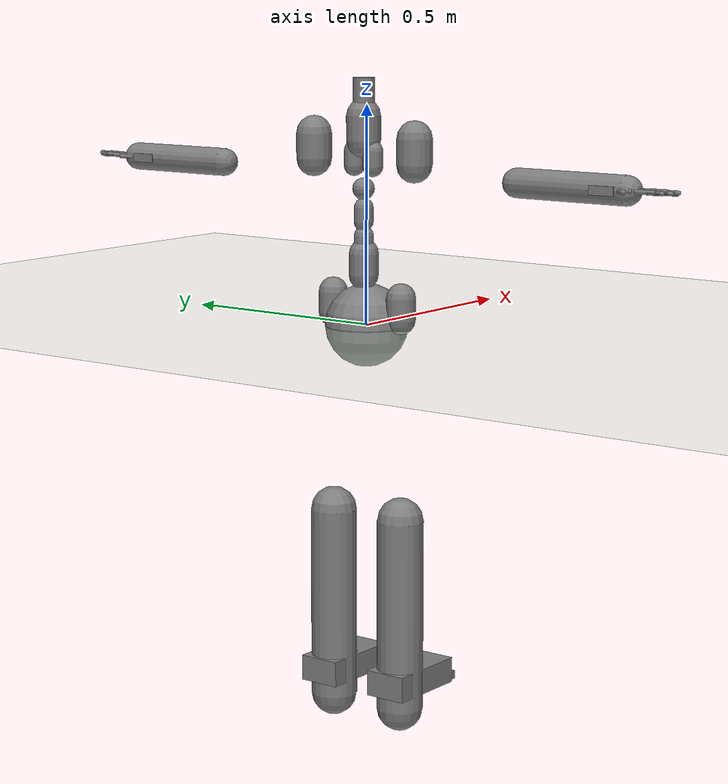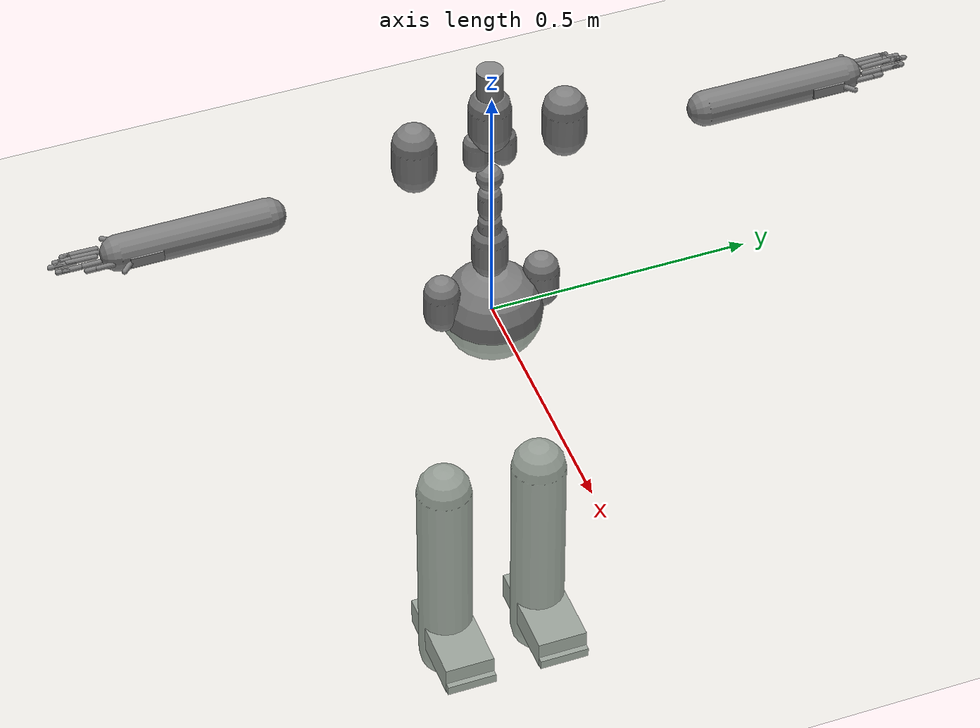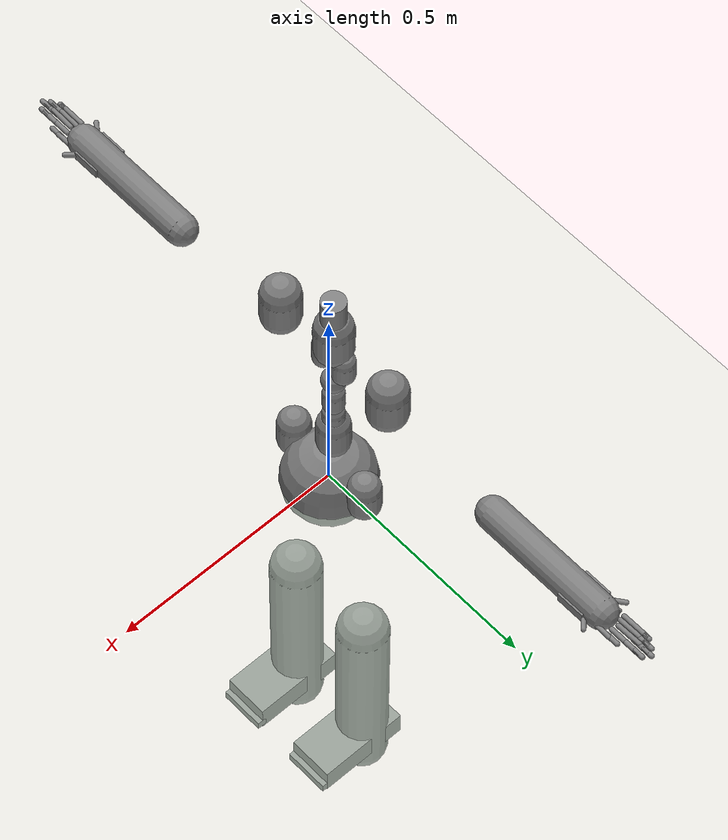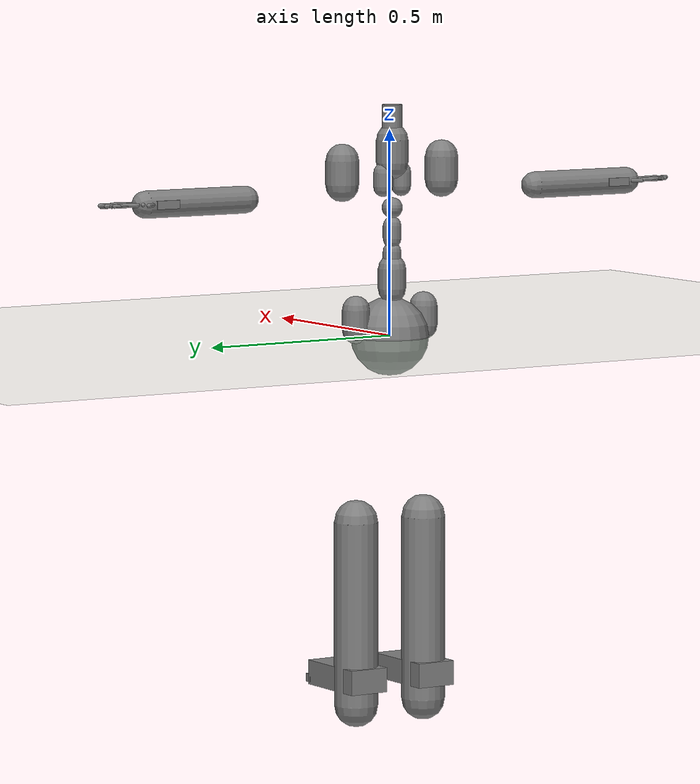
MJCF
<?xml version="1.0" ?>
<mujoco model="humanoid">
  <compiler coordinate="local"/>
  <statistic extent="2" center="0 0 1"/>
  <option timestep="0.00555"/>
  <default>
    <motor ctrlrange="-1 1" ctrllimited="true"/>
    <geom type="capsule" condim="1" friction="1.0 0.05 0.05" solimp=".9 .99 .003" solref=".015 1"/>
    <joint type="hinge" damping="0.1" stiffness="5" armature=".007" limited="true" solimplimit="0 .99 .01"/>
    <site size=".04" group="3"/>
  </default>
  <asset>
    <texture type="skybox" builtin="gradient" rgb1=".4 .5 .6" rgb2="0 0 0" width="100" height="100"/>
    <texture builtin="flat" height="1278" mark="cross" markrgb="1 1 1" name="texgeom" random="0.01" rgb1="0.8 0.6 0.4" rgb2="0.8 0.6 0.4" type="cube" width="127"/>
    <texture builtin="checker" height="100" name="texplane" rgb1="0 0 0" rgb2="0.8 0.8 0.8" type="2d" width="100"/>
    <material name="MatPlane" reflectance="0.5" shininess="1" specular="1" texrepeat="60 60" texture="texplane"/>
    <material name="geom" texture="texgeom" texuniform="true"/>
  </asset>
  <worldbody>
    <light cutoff="100" diffuse="1 1 1" dir="-0 0 -1.3" directional="true" exponent="1" pos="0 0 1.3" specular=".1 .1 .1"/>
    <geom conaffinity="1" condim="3" name="floor" pos="0 0 0" rgba="0.8 0.9 0.8 1" size="100 100 .2" type="plane" material="MatPlane"/>
    <body name="pHipOrigin" pos="0 0 0">
      <freejoint name="pHipOrigin"/>
      <geom type="sphere" contype="1" conaffinity="1" density="4629.6296296296305" size="0.09519" pos="0.0000 0.0000 -0.0000"/>
      <body name="jL5S1" pos="-0.01072624 0 0.09653585">
        <geom type="capsule" contype="1" conaffinity="1" density="1000" fromto="0 0 0.01943 0 0 0.06799" size="0.03400"/>
        <joint name="jL5S1_x" type="hinge" pos="0 0 0" axis="1 0 0" stiffness="500" damping="500" armature="0.02" range="-180.0000 180.0000"/>
        <joint name="jL5S1_y" type="hinge" pos="0 0 0" axis="0 1 0" stiffness="500" damping="500" armature="0.02" range="-180.0000 180.0000"/>
        <joint name="jL5S1_z" type="hinge" pos="0 0 0" axis="0 0 1" stiffness="500" damping="500" armature="0.02" range="-180.0000 180.0000"/>
        <body name="jL4L3" pos="0 0 0.06418378">
          <geom type="capsule" contype="1" conaffinity="1" density="1000" fromto="0 0 0.01284 0 0 0.04493" size="0.02246"/>
          <joint name="jL4L3_x" type="hinge" pos="0 0 0" axis="1 0 0" stiffness="500" damping="500" armature="0.02" range="-180.0000 180.0000"/>
          <joint name="jL4L3_y" type="hinge" pos="0 0 0" axis="0 1 0" stiffness="500" damping="500" armature="0.02" range="-180.0000 180.0000"/>
          <joint name="jL4L3_z" type="hinge" pos="0 0 0" axis="0 0 1" stiffness="500" damping="500" armature="0.02" range="-180.0000 180.0000"/>
          <body name="jL1T12" pos="-0.00049008 0 0.06352319">
            <geom type="capsule" contype="1" conaffinity="1" density="1000" fromto="0 0 0.01271 0 0 0.04447" size="0.02223"/>
            <joint name="jL1T12_x" type="hinge" pos="0 0 0" axis="1 0 0" stiffness="500" damping="500" armature="0.02" range="-180.0000 180.0000"/>
            <joint name="jL1T12_y" type="hinge" pos="0 0 0" axis="0 1 0" stiffness="500" damping="500" armature="0.02" range="-180.0000 180.0000"/>
            <joint name="jL1T12_z" type="hinge" pos="0 0 0" axis="0 0 1" stiffness="500" damping="500" armature="0.02" range="-180.0000 180.0000"/>
            <body name="jT9T8" pos="-0.00048400 0 0.06261329">
              <geom type="sphere" contype="1" conaffinity="1" density="1000" size="0.02505" pos="0.000 0.0000 0.025046"/>
              <joint name="jT9T8_x" type="hinge" pos="0 0 0" axis="1 0 0" stiffness="500" damping="500" armature="0.02" range="-180.0000 180.0000"/>
              <joint name="jT9T8_y" type="hinge" pos="0 0 0" axis="0 1 0" stiffness="500" damping="500" armature="0.02" range="-180.0000 180.0000"/>
              <joint name="jT9T8_z" type="hinge" pos="0 0 0" axis="0 0 1" stiffness="500" damping="500" armature="0.02" range="-180.0000 180.0000"/>
              <body name="jT1C7" pos="0 0 0.11116499">
                <geom type="capsule" contype="1" conaffinity="1" density="1000" fromto="0 0 0.02223 0 0 0.07782" size="0.03891"/>
                <joint name="jT1C7_x" type="hinge" pos="0 0 0" axis="1 0 0" stiffness="500" damping="500" armature="0.02" range="-180.0000 180.0000"/>
                <joint name="jT1C7_y" type="hinge" pos="0 0 0" axis="0 1 0" stiffness="500" damping="500" armature="0.02" range="-180.0000 180.0000"/>
                <joint name="jT1C7_z" type="hinge" pos="0 0 0" axis="0 0 1" stiffness="500" damping="500" armature="0.02" range="-180.0000 180.0000"/>
                <body name="jC1Head" pos="0.00095968 0 0.08134524">
                  <geom type="cylinder" contype="1" conaffinity="1" density="1000" fromto="0 0 0 0 0 0.08135" size="0.02441"/>
                  <joint name="jC1Head_x" type="hinge" pos="0 0 0" axis="1 0 0" stiffness="500" damping="500" armature="0.02" range="-180.0000 180.0000"/>
                  <joint name="jC1Head_y" type="hinge" pos="0 0 0" axis="0 1 0" stiffness="500" damping="500" armature="0.02" range="-180.0000 180.0000"/>
                  <joint name="jC1Head_z" type="hinge" pos="0 0 0" axis="0 0 1" stiffness="500" damping="500" armature="0.02" range="-180.0000 180.0000"/>
                </body>
              </body>
              <body name="jRightT4Shoulder" pos="0 -0.02579608 0.06289650">
                <geom type="capsule" contype="1" conaffinity="1" density="1000" fromto="0 0 0.01360 0 0 0.04759" size="0.02379"/>
                <joint name="jRightT4Shoulder_x" type="hinge" pos="0 0 0" axis="1 0 0" stiffness="500" damping="500" armature="0.02" range="-180.0000 180.0000"/>
                <joint name="jRightT4Shoulder_y" type="hinge" pos="0 0 0" axis="0 1 0" stiffness="500" damping="500" armature="0.02" range="-180.0000 180.0000"/>
                <joint name="jRightT4Shoulder_z" type="hinge" pos="0 0 0" axis="0 0 1" stiffness="500" damping="500" armature="0.02" range="-180.0000 180.0000"/>
                <body name="jRightShoulder" pos="0 -0.11571682 0">
                  <geom type="capsule" contype="1" conaffinity="1" density="1000" fromto="0 0 0.02314 0 0 0.08100" size="0.04050"/>
                  <joint name="jRightShoulder_x" type="hinge" pos="0 0 0" axis="1 0 0" stiffness="500" damping="500" armature="0.02" range="-180.0000 180.0000"/>
                  <joint name="jRightShoulder_y" type="hinge" pos="0 0 0" axis="0 1 0" stiffness="500" damping="500" armature="0.02" range="-180.0000 180.0000"/>
                  <joint name="jRightShoulder_z" type="hinge" pos="0 0 0" axis="0 0 1" stiffness="500" damping="500" armature="0.02" range="-180.0000 180.0000"/>
                  <body name="jRightElbow" pos="0 -0.27214709 0">
                    <geom type="capsule" contype="1" conaffinity="1" density="1000" fromto="0 0 0 0.00000000 -0.27214709 0.00000000" size="0.03266"/>
                    <joint name="jRightElbow_x" type="hinge" pos="0 0 0" axis="1 0 0" stiffness="500" damping="500" armature="0.02" range="-180.0000 180.0000"/>
                    <joint name="jRightElbow_y" type="hinge" pos="0 0 0" axis="0 1 0" stiffness="500" damping="500" armature="0.02" range="-180.0000 180.0000"/>
                    <joint name="jRightElbow_z" type="hinge" pos="0 0 0" axis="0 0 1" stiffness="500" damping="500" armature="0.02" range="-180.0000 180.0000"/>
                    <body name="jRightWrist" pos="0.00009209 -0.22881363 0">
                      <geom density="1000" type="box" pos="0 0 0" size="0.035 0.03 0.01" quat="1.0000 0.0000 0.0000 0.0000"/>
                      <joint name="jRightWrist_x" type="hinge" pos="0 0 0" axis="1 0 0" stiffness="500" damping="500" armature="0.02" range="-180.0000 180.0000"/>
                      <joint name="jRightWrist_y" type="hinge" pos="0 0 0" axis="0 1 0" stiffness="500" damping="500" armature="0.02" range="-180.0000 180.0000"/>
                      <joint name="jRightWrist_z" type="hinge" pos="0 0 0" axis="0 0 1" stiffness="500" damping="500" armature="0.02" range="-180.0000 180.0000"/>
                      <body name="jRightFirstCMC" pos="0.02368255 -0.02270105 -0.00107249">
                        <geom type="capsule" contype="1" conaffinity="1" density="1000" fromto="0 0 0 0.02368255 -0.02270105 -0.00107249" size="0.005"/>
                        <joint name="jRightFirstCMC_x" type="hinge" pos="0 0 0" axis="1 0 0" stiffness="500" damping="500" armature="0.02" range="-180.0000 180.0000"/>
                        <joint name="jRightFirstCMC_y" type="hinge" pos="0 0 0" axis="0 1 0" stiffness="500" damping="500" armature="0.02" range="-180.0000 180.0000"/>
                        <joint name="jRightFirstCMC_z" type="hinge" pos="0 0 0" axis="0 0 1" stiffness="500" damping="500" armature="0.02" range="-180.0000 180.0000"/>
                        <body name="jRightFirstMCP" pos="0.00114821 -0.03240186 0.00068465">
                          <geom type="capsule" contype="1" conaffinity="1" density="1000" fromto="0 0 0 0.00114821 -0.03240186 0.00068465" size="0.005"/>
                          <joint name="jRightFirstMCP_x" type="hinge" pos="0 0 0" axis="1 0 0" stiffness="500" damping="500" armature="0.02" range="-180.0000 180.0000"/>
                          <joint name="jRightFirstMCP_y" type="hinge" pos="0 0 0" axis="0 1 0" stiffness="500" damping="500" armature="0.02" range="-180.0000 180.0000"/>
                          <joint name="jRightFirstMCP_z" type="hinge" pos="0 0 0" axis="0 0 1" stiffness="500" damping="500" armature="0.02" range="-180.0000 180.0000"/>
                          <body name="jRightIP" pos="0 -0.02560703 0">
                            <geom type="capsule" contype="1" conaffinity="1" density="1000" fromto="0 0 0 0.00000000 -0.02560703 0.00000000" size="0.005"/>
                            <joint name="jRightIP_x" type="hinge" pos="0 0 0" axis="1 0 0" stiffness="500" damping="500" armature="0.02" range="-180.0000 180.0000"/>
                            <joint name="jRightIP_y" type="hinge" pos="0 0 0" axis="0 1 0" stiffness="500" damping="500" armature="0.02" range="-180.0000 180.0000"/>
                            <joint name="jRightIP_z" type="hinge" pos="0 0 0" axis="0 0 1" stiffness="500" damping="500" armature="0.02" range="-180.0000 180.0000"/>
                          </body>
                        </body>
                      </body>
                      <body name="jRightSecondCMC" pos="0.01078320 -0.03150510 -0.00054953">
                        <geom type="capsule" contype="1" conaffinity="1" density="1000" fromto="0 0 0 0.01078320 -0.03150510 -0.00054953" size="0.005"/>
                        <joint name="jRightSecondCMC_x" type="hinge" pos="0 0 0" axis="1 0 0" stiffness="500" damping="500" armature="0.02" range="-180.0000 180.0000"/>
                        <joint name="jRightSecondCMC_y" type="hinge" pos="0 0 0" axis="0 1 0" stiffness="500" damping="500" armature="0.02" range="-180.0000 180.0000"/>
                        <joint name="jRightSecondCMC_z" type="hinge" pos="0 0 0" axis="0 0 1" stiffness="500" damping="500" armature="0.02" range="-180.0000 180.0000"/>
                        <body name="jRightSecondMCP" pos="-0.00030165 -0.04811150 -0.00049908">
                          <geom type="capsule" contype="1" conaffinity="1" density="1000" fromto="0 0 0 -0.00030165 -0.04811150 -0.00049908" size="0.005"/>
                          <joint name="jRightSecondMCP_x" type="hinge" pos="0 0 0" axis="1 0 0" stiffness="500" damping="500" armature="0.02" range="-180.0000 180.0000"/>
                          <joint name="jRightSecondMCP_y" type="hinge" pos="0 0 0" axis="0 1 0" stiffness="500" damping="500" armature="0.02" range="-180.0000 180.0000"/>
                          <joint name="jRightSecondMCP_z" type="hinge" pos="0 0 0" axis="0 0 1" stiffness="500" damping="500" armature="0.02" range="-180.0000 180.0000"/>
                          <body name="jRightSecondPIP" pos="0 -0.03404180 0">
                            <geom type="capsule" contype="1" conaffinity="1" density="1000" fromto="0 0 0 0.00000000 -0.03404180 0.00000000" size="0.005"/>
                            <joint name="jRightSecondPIP_x" type="hinge" pos="0 0 0" axis="1 0 0" stiffness="500" damping="500" armature="0.02" range="-180.0000 180.0000"/>
                            <joint name="jRightSecondPIP_y" type="hinge" pos="0 0 0" axis="0 1 0" stiffness="500" damping="500" armature="0.02" range="-180.0000 180.0000"/>
                            <joint name="jRightSecondPIP_z" type="hinge" pos="0 0 0" axis="0 0 1" stiffness="500" damping="500" armature="0.02" range="-180.0000 180.0000"/>
                            <body name="jRightSecondDIP" pos="0 -0.02043762 0">
                              <geom type="capsule" contype="1" conaffinity="1" density="1000" fromto="0 0 0 0.00000000 -0.02043762 0.00000000" size="0.005"/>
                              <joint name="jRightSecondDIP_x" type="hinge" pos="0 0 0" axis="1 0 0" stiffness="500" damping="500" armature="0.02" range="-180.0000 180.0000"/>
                              <joint name="jRightSecondDIP_y" type="hinge" pos="0 0 0" axis="0 1 0" stiffness="500" damping="500" armature="0.02" range="-180.0000 180.0000"/>
                              <joint name="jRightSecondDIP_z" type="hinge" pos="0 0 0" axis="0 0 1" stiffness="500" damping="500" armature="0.02" range="-180.0000 180.0000"/>
                            </body>
                          </body>
                        </body>
                      </body>
                      <body name="jRightThirdCMC" pos="-0.00061164 -0.03307614 0.00139057">
                        <geom type="capsule" contype="1" conaffinity="1" density="1000" fromto="0 0 0 -0.00061164 -0.03307614 0.00139057" size="0.005"/>
                        <joint name="jRightThirdCMC_x" type="hinge" pos="0 0 0" axis="1 0 0" stiffness="500" damping="500" armature="0.02" range="-180.0000 180.0000"/>
                        <joint name="jRightThirdCMC_y" type="hinge" pos="0 0 0" axis="0 1 0" stiffness="500" damping="500" armature="0.02" range="-180.0000 180.0000"/>
                        <joint name="jRightThirdCMC_z" type="hinge" pos="0 0 0" axis="0 0 1" stiffness="500" damping="500" armature="0.02" range="-180.0000 180.0000"/>
                        <body name="jRightThirdMCP" pos="-0.00061029 -0.05056236 0.00137561">
                          <geom type="capsule" contype="1" conaffinity="1" density="1000" fromto="0 0 0 -0.00061029 -0.05056236 0.00137561" size="0.005"/>
                          <joint name="jRightThirdMCP_x" type="hinge" pos="0 0 0" axis="1 0 0" stiffness="500" damping="500" armature="0.02" range="-180.0000 180.0000"/>
                          <joint name="jRightThirdMCP_y" type="hinge" pos="0 0 0" axis="0 1 0" stiffness="500" damping="500" armature="0.02" range="-180.0000 180.0000"/>
                          <joint name="jRightThirdMCP_z" type="hinge" pos="0 0 0" axis="0 0 1" stiffness="500" damping="500" armature="0.02" range="-180.0000 180.0000"/>
                          <body name="jRightThirdPIP" pos="0 -0.03729303 0">
                            <geom type="capsule" contype="1" conaffinity="1" density="1000" fromto="0 0 0 0.00000000 -0.03729303 0.00000000" size="0.005"/>
                            <joint name="jRightThirdPIP_x" type="hinge" pos="0 0 0" axis="1 0 0" stiffness="500" damping="500" armature="0.02" range="-180.0000 180.0000"/>
                            <joint name="jRightThirdPIP_y" type="hinge" pos="0 0 0" axis="0 1 0" stiffness="500" damping="500" armature="0.02" range="-180.0000 180.0000"/>
                            <joint name="jRightThirdPIP_z" type="hinge" pos="0 0 0" axis="0 0 1" stiffness="500" damping="500" armature="0.02" range="-180.0000 180.0000"/>
                            <body name="jRightThirdDIP" pos="0 -0.02198494 0">
                              <geom type="capsule" contype="1" conaffinity="1" density="1000" fromto="0 0 0 0.00000000 -0.02198494 0.00000000" size="0.005"/>
                              <joint name="jRightThirdDIP_x" type="hinge" pos="0 0 0" axis="1 0 0" stiffness="500" damping="500" armature="0.02" range="-180.0000 180.0000"/>
                              <joint name="jRightThirdDIP_y" type="hinge" pos="0 0 0" axis="0 1 0" stiffness="500" damping="500" armature="0.02" range="-180.0000 180.0000"/>
                              <joint name="jRightThirdDIP_z" type="hinge" pos="0 0 0" axis="0 0 1" stiffness="500" damping="500" armature="0.02" range="-180.0000 180.0000"/>
                            </body>
                          </body>
                        </body>
                      </body>
                      <body name="jRightFourthCMC" pos="-0.01125320 -0.03134202 0.00073774">
                        <geom type="capsule" contype="1" conaffinity="1" density="1000" fromto="0 0 0 -0.01125320 -0.03134202 0.00073774" size="0.005"/>
                        <joint name="jRightFourthCMC_x" type="hinge" pos="0 0 0" axis="1 0 0" stiffness="500" damping="500" armature="0.02" range="-180.0000 180.0000"/>
                        <joint name="jRightFourthCMC_y" type="hinge" pos="0 0 0" axis="0 1 0" stiffness="500" damping="500" armature="0.02" range="-180.0000 180.0000"/>
                        <joint name="jRightFourthCMC_z" type="hinge" pos="0 0 0" axis="0 0 1" stiffness="500" damping="500" armature="0.02" range="-180.0000 180.0000"/>
                        <body name="jRightFourthMCP" pos="-0.00033451 -0.04584823 0.00072031">
                          <geom type="capsule" contype="1" conaffinity="1" density="1000" fromto="0 0 0 -0.00033451 -0.04584823 0.00072031" size="0.005"/>
                          <joint name="jRightFourthMCP_x" type="hinge" pos="0 0 0" axis="1 0 0" stiffness="500" damping="500" armature="0.02" range="-180.0000 180.0000"/>
                          <joint name="jRightFourthMCP_y" type="hinge" pos="0 0 0" axis="0 1 0" stiffness="500" damping="500" armature="0.02" range="-180.0000 180.0000"/>
                          <joint name="jRightFourthMCP_z" type="hinge" pos="0 0 0" axis="0 0 1" stiffness="500" damping="500" armature="0.02" range="-180.0000 180.0000"/>
                          <body name="jRightFourthPIP" pos="0 -0.03535615 0">
                            <geom type="capsule" contype="1" conaffinity="1" density="1000" fromto="0 0 0 0.00000000 -0.03535615 0.00000000" size="0.005"/>
                            <joint name="jRightFourthPIP_x" type="hinge" pos="0 0 0" axis="1 0 0" stiffness="500" damping="500" armature="0.02" range="-180.0000 180.0000"/>
                            <joint name="jRightFourthPIP_y" type="hinge" pos="0 0 0" axis="0 1 0" stiffness="500" damping="500" armature="0.02" range="-180.0000 180.0000"/>
                            <joint name="jRightFourthPIP_z" type="hinge" pos="0 0 0" axis="0 0 1" stiffness="500" damping="500" armature="0.02" range="-180.0000 180.0000"/>
                            <body name="jRightFourthDIP" pos="0 -0.02095963 0">
                              <geom type="capsule" contype="1" conaffinity="1" density="1000" fromto="0 0 0 0.00000000 -0.02095963 0.00000000" size="0.005"/>
                              <joint name="jRightFourthDIP_x" type="hinge" pos="0 0 0" axis="1 0 0" stiffness="500" damping="500" armature="0.02" range="-180.0000 180.0000"/>
                              <joint name="jRightFourthDIP_y" type="hinge" pos="0 0 0" axis="0 1 0" stiffness="500" damping="500" armature="0.02" range="-180.0000 180.0000"/>
                              <joint name="jRightFourthDIP_z" type="hinge" pos="0 0 0" axis="0 0 1" stiffness="500" damping="500" armature="0.02" range="-180.0000 180.0000"/>
                            </body>
                          </body>
                        </body>
                      </body>
                      <body name="jRightFifthCMC" pos="-0.02166397 -0.03018628 0.00059548">
                        <geom type="capsule" contype="1" conaffinity="1" density="1000" fromto="0 0 0 -0.02166397 -0.03018628 0.00059548" size="0.005"/>
                        <joint name="jRightFifthCMC_x" type="hinge" pos="0 0 0" axis="1 0 0" stiffness="500" damping="500" armature="0.02" range="-180.0000 180.0000"/>
                        <joint name="jRightFifthCMC_y" type="hinge" pos="0 0 0" axis="0 1 0" stiffness="500" damping="500" armature="0.02" range="-180.0000 180.0000"/>
                        <joint name="jRightFifthCMC_z" type="hinge" pos="0 0 0" axis="0 0 1" stiffness="500" damping="500" armature="0.02" range="-180.0000 180.0000"/>
                        <body name="jRightFifthMCP" pos="-0.00000689 -0.04663108 0.00064170">
                          <geom type="capsule" contype="1" conaffinity="1" density="1000" fromto="0 0 0 -0.00000689 -0.04663108 0.00064170" size="0.005"/>
                          <joint name="jRightFifthMCP_x" type="hinge" pos="0 0 0" axis="1 0 0" stiffness="500" damping="500" armature="0.02" range="-180.0000 180.0000"/>
                          <joint name="jRightFifthMCP_y" type="hinge" pos="0 0 0" axis="0 1 0" stiffness="500" damping="500" armature="0.02" range="-180.0000 180.0000"/>
                          <joint name="jRightFifthMCP_z" type="hinge" pos="0 0 0" axis="0 0 1" stiffness="500" damping="500" armature="0.02" range="-180.0000 180.0000"/>
                          <body name="jRightFifthPIP" pos="0 -0.02942853 0">
                            <geom type="capsule" contype="1" conaffinity="1" density="1000" fromto="0 0 0 0.00000000 -0.02942853 0.00000000" size="0.005"/>
                            <joint name="jRightFifthPIP_x" type="hinge" pos="0 0 0" axis="1 0 0" stiffness="500" damping="500" armature="0.02" range="-180.0000 180.0000"/>
                            <joint name="jRightFifthPIP_y" type="hinge" pos="0 0 0" axis="0 1 0" stiffness="500" damping="500" armature="0.02" range="-180.0000 180.0000"/>
                            <joint name="jRightFifthPIP_z" type="hinge" pos="0 0 0" axis="0 0 1" stiffness="500" damping="500" armature="0.02" range="-180.0000 180.0000"/>
                            <body name="jRightFifthDIP" pos="0 -0.01598653 0">
                              <geom type="capsule" contype="1" conaffinity="1" density="1000" fromto="0 0 0 0.00000000 -0.01598653 0.00000000" size="0.005"/>
                              <joint name="jRightFifthDIP_x" type="hinge" pos="0 0 0" axis="1 0 0" stiffness="500" damping="500" armature="0.02" range="-180.0000 180.0000"/>
                              <joint name="jRightFifthDIP_y" type="hinge" pos="0 0 0" axis="0 1 0" stiffness="500" damping="500" armature="0.02" range="-180.0000 180.0000"/>
                              <joint name="jRightFifthDIP_z" type="hinge" pos="0 0 0" axis="0 0 1" stiffness="500" damping="500" armature="0.02" range="-180.0000 180.0000"/>
                            </body>
                          </body>
                        </body>
                      </body>
                    </body>
                  </body>
                </body>
              </body>
              <body name="jLeftT4Shoulder" pos="0 0.02576964 0.06283203">
                <geom type="capsule" contype="1" conaffinity="1" density="1000" fromto="0 0 0.01358 0 0 0.04754" size="0.02377"/>
                <joint name="jLeftT4Shoulder_x" type="hinge" pos="0 0 0" axis="1 0 0" stiffness="500" damping="500" armature="0.02" range="-180.0000 180.0000"/>
                <joint name="jLeftT4Shoulder_y" type="hinge" pos="0 0 0" axis="0 1 0" stiffness="500" damping="500" armature="0.02" range="-180.0000 180.0000"/>
                <joint name="jLeftT4Shoulder_z" type="hinge" pos="0 0 0" axis="0 0 1" stiffness="500" damping="500" armature="0.02" range="-180.0000 180.0000"/>
                <body name="jLeftShoulder" pos="0 0.11593467 0">
                  <geom type="capsule" contype="1" conaffinity="1" density="1000" fromto="0 0 0.02319 0 0 0.08115" size="0.04058"/>
                  <joint name="jLeftShoulder_x" type="hinge" pos="0 0 0" axis="1 0 0" stiffness="500" damping="500" armature="0.02" range="-180.0000 180.0000"/>
                  <joint name="jLeftShoulder_y" type="hinge" pos="0 0 0" axis="0 1 0" stiffness="500" damping="500" armature="0.02" range="-180.0000 180.0000"/>
                  <joint name="jLeftShoulder_z" type="hinge" pos="0 0 0" axis="0 0 1" stiffness="500" damping="500" armature="0.02" range="-180.0000 180.0000"/>
                  <body name="jLeftElbow" pos="0 0.27141038 0">
                    <geom type="capsule" contype="1" conaffinity="1" density="1000" fromto="0 0 0 0.00000000 0.27141038 0.00000000" size="0.03257"/>
                    <joint name="jLeftElbow_x" type="hinge" pos="0 0 0" axis="1 0 0" stiffness="500" damping="500" armature="0.02" range="-180.0000 180.0000"/>
                    <joint name="jLeftElbow_y" type="hinge" pos="0 0 0" axis="0 1 0" stiffness="500" damping="500" armature="0.02" range="-180.0000 180.0000"/>
                    <joint name="jLeftElbow_z" type="hinge" pos="0 0 0" axis="0 0 1" stiffness="500" damping="500" armature="0.02" range="-180.0000 180.0000"/>
                    <body name="jLeftWrist" pos="0.00009202 0.22861987 0">
                      <geom density="1000" type="box" pos="0 0 0" size="0.035 0.03 0.01" quat="1.0000 0.0000 0.0000 0.0000"/>
                      <joint name="jLeftWrist_x" type="hinge" pos="0 0 0" axis="1 0 0" stiffness="500" damping="500" armature="0.02" range="-180.0000 180.0000"/>
                      <joint name="jLeftWrist_y" type="hinge" pos="0 0 0" axis="0 1 0" stiffness="500" damping="500" armature="0.02" range="-180.0000 180.0000"/>
                      <joint name="jLeftWrist_z" type="hinge" pos="0 0 0" axis="0 0 1" stiffness="500" damping="500" armature="0.02" range="-180.0000 180.0000"/>
                      <body name="jLeftFirstCMC" pos="0.02317963 0.02323437 -0.00103744">
                        <geom type="capsule" contype="1" conaffinity="1" density="1000" fromto="0 0 0 0.02317963 0.02323437 -0.00103744" size="0.005"/>
                        <joint name="jLeftFirstCMC_x" type="hinge" pos="0 0 0" axis="1 0 0" stiffness="500" damping="500" armature="0.02" range="-180.0000 180.0000"/>
                        <joint name="jLeftFirstCMC_y" type="hinge" pos="0 0 0" axis="0 1 0" stiffness="500" damping="500" armature="0.02" range="-180.0000 180.0000"/>
                        <joint name="jLeftFirstCMC_z" type="hinge" pos="0 0 0" axis="0 0 1" stiffness="500" damping="500" armature="0.02" range="-180.0000 180.0000"/>
                        <body name="jLeftFirstMCP" pos="0.00113715 0.03240113 0.00066722">
                          <geom type="capsule" contype="1" conaffinity="1" density="1000" fromto="0 0 0 0.00113715 0.03240113 0.00066722" size="0.005"/>
                          <joint name="jLeftFirstMCP_x" type="hinge" pos="0 0 0" axis="1 0 0" stiffness="500" damping="500" armature="0.02" range="-180.0000 180.0000"/>
                          <joint name="jLeftFirstMCP_y" type="hinge" pos="0 0 0" axis="0 1 0" stiffness="500" damping="500" armature="0.02" range="-180.0000 180.0000"/>
                          <joint name="jLeftFirstMCP_z" type="hinge" pos="0 0 0" axis="0 0 1" stiffness="500" damping="500" armature="0.02" range="-180.0000 180.0000"/>
                          <body name="jLeftIP" pos="0 0.02560703 0">
                            <geom type="capsule" contype="1" conaffinity="1" density="1000" fromto="0 0 0 0.00000000 0.02560703 0.00000000" size="0.005"/>
                            <joint name="jLeftIP_x" type="hinge" pos="0 0 0" axis="1 0 0" stiffness="500" damping="500" armature="0.02" range="-180.0000 180.0000"/>
                            <joint name="jLeftIP_y" type="hinge" pos="0 0 0" axis="0 1 0" stiffness="500" damping="500" armature="0.02" range="-180.0000 180.0000"/>
                            <joint name="jLeftIP_z" type="hinge" pos="0 0 0" axis="0 0 1" stiffness="500" damping="500" armature="0.02" range="-180.0000 180.0000"/>
                          </body>
                        </body>
                      </body>
                      <body name="jLeftSecondCMC" pos="0.01090740 0.03144713 -0.00055406">
                        <geom type="capsule" contype="1" conaffinity="1" density="1000" fromto="0 0 0 0.01090740 0.03144713 -0.00055406" size="0.005"/>
                        <joint name="jLeftSecondCMC_x" type="hinge" pos="0 0 0" axis="1 0 0" stiffness="500" damping="500" armature="0.02" range="-180.0000 180.0000"/>
                        <joint name="jLeftSecondCMC_y" type="hinge" pos="0 0 0" axis="0 1 0" stiffness="500" damping="500" armature="0.02" range="-180.0000 180.0000"/>
                        <joint name="jLeftSecondCMC_z" type="hinge" pos="0 0 0" axis="0 0 1" stiffness="500" damping="500" armature="0.02" range="-180.0000 180.0000"/>
                        <body name="jLeftSecondMCP" pos="-0.00026302 0.04811249 -0.00050524">
                          <geom type="capsule" contype="1" conaffinity="1" density="1000" fromto="0 0 0 -0.00026302 0.04811249 -0.00050524" size="0.005"/>
                          <joint name="jLeftSecondMCP_x" type="hinge" pos="0 0 0" axis="1 0 0" stiffness="500" damping="500" armature="0.02" range="-180.0000 180.0000"/>
                          <joint name="jLeftSecondMCP_y" type="hinge" pos="0 0 0" axis="0 1 0" stiffness="500" damping="500" armature="0.02" range="-180.0000 180.0000"/>
                          <joint name="jLeftSecondMCP_z" type="hinge" pos="0 0 0" axis="0 0 1" stiffness="500" damping="500" armature="0.02" range="-180.0000 180.0000"/>
                          <body name="jLeftSecondPIP" pos="0 0.03404180 0">
                            <geom type="capsule" contype="1" conaffinity="1" density="1000" fromto="0 0 0 0.00000000 0.03404180 0.00000000" size="0.005"/>
                            <joint name="jLeftSecondPIP_x" type="hinge" pos="0 0 0" axis="1 0 0" stiffness="500" damping="500" armature="0.02" range="-180.0000 180.0000"/>
                            <joint name="jLeftSecondPIP_y" type="hinge" pos="0 0 0" axis="0 1 0" stiffness="500" damping="500" armature="0.02" range="-180.0000 180.0000"/>
                            <joint name="jLeftSecondPIP_z" type="hinge" pos="0 0 0" axis="0 0 1" stiffness="500" damping="500" armature="0.02" range="-180.0000 180.0000"/>
                            <body name="jLeftSecondDIP" pos="0 0.02043762 0">
                              <geom type="capsule" contype="1" conaffinity="1" density="1000" fromto="0 0 0 0.00000000 0.02043762 0.00000000" size="0.005"/>
                              <joint name="jLeftSecondDIP_x" type="hinge" pos="0 0 0" axis="1 0 0" stiffness="500" damping="500" armature="0.02" range="-180.0000 180.0000"/>
                              <joint name="jLeftSecondDIP_y" type="hinge" pos="0 0 0" axis="0 1 0" stiffness="500" damping="500" armature="0.02" range="-180.0000 180.0000"/>
                              <joint name="jLeftSecondDIP_z" type="hinge" pos="0 0 0" axis="0 0 1" stiffness="500" damping="500" armature="0.02" range="-180.0000 180.0000"/>
                            </body>
                          </body>
                        </body>
                      </body>
                      <body name="jLeftThirdCMC" pos="-0.00061523 0.03307912 0.00134422">
                        <geom type="capsule" contype="1" conaffinity="1" density="1000" fromto="0 0 0 -0.00061523 0.03307912 0.00134422" size="0.005"/>
                        <joint name="jLeftThirdCMC_x" type="hinge" pos="0 0 0" axis="1 0 0" stiffness="500" damping="500" armature="0.02" range="-180.0000 180.0000"/>
                        <joint name="jLeftThirdCMC_y" type="hinge" pos="0 0 0" axis="0 1 0" stiffness="500" damping="500" armature="0.02" range="-180.0000 180.0000"/>
                        <joint name="jLeftThirdCMC_z" type="hinge" pos="0 0 0" axis="0 0 1" stiffness="500" damping="500" armature="0.02" range="-180.0000 180.0000"/>
                        <body name="jLeftThirdMCP" pos="-0.00061521 0.05056334 0.00134795">
                          <geom type="capsule" contype="1" conaffinity="1" density="1000" fromto="0 0 0 -0.00061521 0.05056334 0.00134795" size="0.005"/>
                          <joint name="jLeftThirdMCP_x" type="hinge" pos="0 0 0" axis="1 0 0" stiffness="500" damping="500" armature="0.02" range="-180.0000 180.0000"/>
                          <joint name="jLeftThirdMCP_y" type="hinge" pos="0 0 0" axis="0 1 0" stiffness="500" damping="500" armature="0.02" range="-180.0000 180.0000"/>
                          <joint name="jLeftThirdMCP_z" type="hinge" pos="0 0 0" axis="0 0 1" stiffness="500" damping="500" armature="0.02" range="-180.0000 180.0000"/>
                          <body name="jLeftThirdPIP" pos="0 0.03729303 0">
                            <geom type="capsule" contype="1" conaffinity="1" density="1000" fromto="0 0 0 0.00000000 0.03729303 0.00000000" size="0.005"/>
                            <joint name="jLeftThirdPIP_x" type="hinge" pos="0 0 0" axis="1 0 0" stiffness="500" damping="500" armature="0.02" range="-180.0000 180.0000"/>
                            <joint name="jLeftThirdPIP_y" type="hinge" pos="0 0 0" axis="0 1 0" stiffness="500" damping="500" armature="0.02" range="-180.0000 180.0000"/>
                            <joint name="jLeftThirdPIP_z" type="hinge" pos="0 0 0" axis="0 0 1" stiffness="500" damping="500" armature="0.02" range="-180.0000 180.0000"/>
                            <body name="jLeftThirdDIP" pos="0 0.02198494 0">
                              <geom type="capsule" contype="1" conaffinity="1" density="1000" fromto="0 0 0 0.00000000 0.02198494 0.00000000" size="0.005"/>
                              <joint name="jLeftThirdDIP_x" type="hinge" pos="0 0 0" axis="1 0 0" stiffness="500" damping="500" armature="0.02" range="-180.0000 180.0000"/>
                              <joint name="jLeftThirdDIP_y" type="hinge" pos="0 0 0" axis="0 1 0" stiffness="500" damping="500" armature="0.02" range="-180.0000 180.0000"/>
                              <joint name="jLeftThirdDIP_z" type="hinge" pos="0 0 0" axis="0 0 1" stiffness="500" damping="500" armature="0.02" range="-180.0000 180.0000"/>
                            </body>
                          </body>
                        </body>
                      </body>
                      <body name="jLeftFourthCMC" pos="-0.01166612 0.03118171 0.00078753">
                        <geom type="capsule" contype="1" conaffinity="1" density="1000" fromto="0 0 0 -0.01166612 0.03118171 0.00078753" size="0.005"/>
                        <joint name="jLeftFourthCMC_x" type="hinge" pos="0 0 0" axis="1 0 0" stiffness="500" damping="500" armature="0.02" range="-180.0000 180.0000"/>
                        <joint name="jLeftFourthCMC_y" type="hinge" pos="0 0 0" axis="0 1 0" stiffness="500" damping="500" armature="0.02" range="-180.0000 180.0000"/>
                        <joint name="jLeftFourthCMC_z" type="hinge" pos="0 0 0" axis="0 0 1" stiffness="500" damping="500" armature="0.02" range="-180.0000 180.0000"/>
                        <body name="jLeftFourthMCP" pos="-0.00035974 0.04584561 0.00076181">
                          <geom type="capsule" contype="1" conaffinity="1" density="1000" fromto="0 0 0 -0.00035974 0.04584561 0.00076181" size="0.005"/>
                          <joint name="jLeftFourthMCP_x" type="hinge" pos="0 0 0" axis="1 0 0" stiffness="500" damping="500" armature="0.02" range="-180.0000 180.0000"/>
                          <joint name="jLeftFourthMCP_y" type="hinge" pos="0 0 0" axis="0 1 0" stiffness="500" damping="500" armature="0.02" range="-180.0000 180.0000"/>
                          <joint name="jLeftFourthMCP_z" type="hinge" pos="0 0 0" axis="0 0 1" stiffness="500" damping="500" armature="0.02" range="-180.0000 180.0000"/>
                          <body name="jLeftFourthPIP" pos="0 0.03535615 0">
                            <geom type="capsule" contype="1" conaffinity="1" density="1000" fromto="0 0 0 0.00000000 0.03535615 0.00000000" size="0.005"/>
                            <joint name="jLeftFourthPIP_x" type="hinge" pos="0 0 0" axis="1 0 0" stiffness="500" damping="500" armature="0.02" range="-180.0000 180.0000"/>
                            <joint name="jLeftFourthPIP_y" type="hinge" pos="0 0 0" axis="0 1 0" stiffness="500" damping="500" armature="0.02" range="-180.0000 180.0000"/>
                            <joint name="jLeftFourthPIP_z" type="hinge" pos="0 0 0" axis="0 0 1" stiffness="500" damping="500" armature="0.02" range="-180.0000 180.0000"/>
                            <body name="jLeftFourthDIP" pos="0 0.02095963 0">
                              <geom type="capsule" contype="1" conaffinity="1" density="1000" fromto="0 0 0 0.00000000 0.02095963 0.00000000" size="0.005"/>
                              <joint name="jLeftFourthDIP_x" type="hinge" pos="0 0 0" axis="1 0 0" stiffness="500" damping="500" armature="0.02" range="-180.0000 180.0000"/>
                              <joint name="jLeftFourthDIP_y" type="hinge" pos="0 0 0" axis="0 1 0" stiffness="500" damping="500" armature="0.02" range="-180.0000 180.0000"/>
                              <joint name="jLeftFourthDIP_z" type="hinge" pos="0 0 0" axis="0 0 1" stiffness="500" damping="500" armature="0.02" range="-180.0000 180.0000"/>
                            </body>
                          </body>
                        </body>
                      </body>
                      <body name="jLeftFifthCMC" pos="-0.02232026 0.02970906 0.00060505">
                        <geom type="capsule" contype="1" conaffinity="1" density="1000" fromto="0 0 0 -0.02232026 0.02970906 0.00060505" size="0.005"/>
                        <joint name="jLeftFifthCMC_x" type="hinge" pos="0 0 0" axis="1 0 0" stiffness="500" damping="500" armature="0.02" range="-180.0000 180.0000"/>
                        <joint name="jLeftFifthCMC_y" type="hinge" pos="0 0 0" axis="0 1 0" stiffness="500" damping="500" armature="0.02" range="-180.0000 180.0000"/>
                        <joint name="jLeftFifthCMC_z" type="hinge" pos="0 0 0" axis="0 0 1" stiffness="500" damping="500" armature="0.02" range="-180.0000 180.0000"/>
                        <body name="jLeftFifthMCP" pos="-0.00001322 0.04662981 0.00067097">
                          <geom type="capsule" contype="1" conaffinity="1" density="1000" fromto="0 0 0 -0.00001322 0.04662981 0.00067097" size="0.005"/>
                          <joint name="jLeftFifthMCP_x" type="hinge" pos="0 0 0" axis="1 0 0" stiffness="500" damping="500" armature="0.02" range="-180.0000 180.0000"/>
                          <joint name="jLeftFifthMCP_y" type="hinge" pos="0 0 0" axis="0 1 0" stiffness="500" damping="500" armature="0.02" range="-180.0000 180.0000"/>
                          <joint name="jLeftFifthMCP_z" type="hinge" pos="0 0 0" axis="0 0 1" stiffness="500" damping="500" armature="0.02" range="-180.0000 180.0000"/>
                          <body name="jLeftFifthPIP" pos="0 0.02942853 0">
                            <geom type="capsule" contype="1" conaffinity="1" density="1000" fromto="0 0 0 0.00000000 0.02942853 0.00000000" size="0.005"/>
                            <joint name="jLeftFifthPIP_x" type="hinge" pos="0 0 0" axis="1 0 0" stiffness="500" damping="500" armature="0.02" range="-180.0000 180.0000"/>
                            <joint name="jLeftFifthPIP_y" type="hinge" pos="0 0 0" axis="0 1 0" stiffness="500" damping="500" armature="0.02" range="-180.0000 180.0000"/>
                            <joint name="jLeftFifthPIP_z" type="hinge" pos="0 0 0" axis="0 0 1" stiffness="500" damping="500" armature="0.02" range="-180.0000 180.0000"/>
                            <body name="jLeftFifthDIP" pos="0 0.01598653 0">
                              <geom type="capsule" contype="1" conaffinity="1" density="1000" fromto="0 0 0 0.00000000 0.01598653 0.00000000" size="0.005"/>
                              <joint name="jLeftFifthDIP_x" type="hinge" pos="0 0 0" axis="1 0 0" stiffness="500" damping="500" armature="0.02" range="-180.0000 180.0000"/>
                              <joint name="jLeftFifthDIP_y" type="hinge" pos="0 0 0" axis="0 1 0" stiffness="500" damping="500" armature="0.02" range="-180.0000 180.0000"/>
                              <joint name="jLeftFifthDIP_z" type="hinge" pos="0 0 0" axis="0 0 1" stiffness="500" damping="500" armature="0.02" range="-180.0000 180.0000"/>
                            </body>
                          </body>
                        </body>
                      </body>
                    </body>
                  </body>
                </body>
              </body>
            </body>
          </body>
        </body>
      </body>
      <body name="jRightHip" pos="-0.00016370 -0.09714464 0.00147365">
        <geom type="capsule" contype="1" conaffinity="1" density="1000" fromto="0 0 0.01943 0 0 0.06801" size="0.03400"/>
        <joint name="jRightHip_x" type="hinge" pos="0 0 0" axis="1 0 0" stiffness="500" damping="500" armature="0.02" range="-180.0000 180.0000"/>
        <joint name="jRightHip_y" type="hinge" pos="0 0 0" axis="0 1 0" stiffness="500" damping="500" armature="0.02" range="-180.0000 180.0000"/>
        <joint name="jRightHip_z" type="hinge" pos="0 0 0" axis="0 0 1" stiffness="500" damping="500" armature="0.02" range="-180.0000 180.0000"/>
        <body name="jRightKnee" pos="0.00005347 0 -0.44847947">
          <geom type="capsule" contype="1" conaffinity="1" density="1000" fromto="0 0 0 0.00005347 0.00000000 -0.44847947" size="0.05382"/>
          <joint name="jRightKnee_x" type="hinge" pos="0 0 0" axis="1 0 0" stiffness="500" damping="500" armature="0.02" range="-180.0000 180.0000"/>
          <joint name="jRightKnee_y" type="hinge" pos="0 0 0" axis="0 1 0" stiffness="500" damping="500" armature="0.02" range="-180.0000 180.0000"/>
          <joint name="jRightKnee_z" type="hinge" pos="0 0 0" axis="0 0 1" stiffness="500" damping="500" armature="0.02" range="-180.0000 180.0000"/>
          <body name="jRightAnkle" pos="0.00039836 0 -0.35279880">
            <geom density="1000" type="box" pos="0.04 0. -0.03" size="0.1 0.05 0.03" quat="1.0 0 0 0"/>
            <joint name="jRightAnkle_x" type="hinge" pos="0 0 0" axis="1 0 0" stiffness="500" damping="500" armature="0.02" range="-180.0000 180.0000"/>
            <joint name="jRightAnkle_y" type="hinge" pos="0 0 0" axis="0 1 0" stiffness="500" damping="500" armature="0.02" range="-180.0000 180.0000"/>
            <joint name="jRightAnkle_z" type="hinge" pos="0 0 0" axis="0 0 1" stiffness="500" damping="500" armature="0.02" range="-180.0000 180.0000"/>
            <body name="jRightBallFoot" pos="0.14171048 0 -0.06501125">
              <geom density="1000" type="box" pos="0 0 0.02" size="0.01 0.05 0.01" quat="1.0 0 0 0"/>
              <joint name="jRightBallFoot_x" type="hinge" pos="0 0 0" axis="1 0 0" stiffness="500" damping="500" armature="0.02" range="-180.0000 180.0000"/>
              <joint name="jRightBallFoot_y" type="hinge" pos="0 0 0" axis="0 1 0" stiffness="500" damping="500" armature="0.02" range="-180.0000 180.0000"/>
              <joint name="jRightBallFoot_z" type="hinge" pos="0 0 0" axis="0 0 1" stiffness="500" damping="500" armature="0.02" range="-180.0000 180.0000"/>
            </body>
          </body>
        </body>
      </body>
      <body name="jLeftHip" pos="-0.00016016 0.09628871 0.00144135">
        <geom type="capsule" contype="1" conaffinity="1" density="1000" fromto="0 0 0.01926 0 0 0.06741" size="0.03370"/>
        <joint name="jLeftHip_x" type="hinge" pos="0 0 0" axis="1 0 0" stiffness="500" damping="500" armature="0.02" range="-180.0000 180.0000"/>
        <joint name="jLeftHip_y" type="hinge" pos="0 0 0" axis="0 1 0" stiffness="500" damping="500" armature="0.02" range="-180.0000 180.0000"/>
        <joint name="jLeftHip_z" type="hinge" pos="0 0 0" axis="0 0 1" stiffness="500" damping="500" armature="0.02" range="-180.0000 180.0000"/>
        <body name="jLeftKnee" pos="0.00005347 0 -0.44844100">
          <geom type="capsule" contype="1" conaffinity="1" density="1000" fromto="0 0 0 0.00005347 0.00000000 -0.44844100" size="0.05381"/>
          <joint name="jLeftKnee_x" type="hinge" pos="0 0 0" axis="1 0 0" stiffness="500" damping="500" armature="0.02" range="-180.0000 180.0000"/>
          <joint name="jLeftKnee_y" type="hinge" pos="0 0 0" axis="0 1 0" stiffness="500" damping="500" armature="0.02" range="-180.0000 180.0000"/>
          <joint name="jLeftKnee_z" type="hinge" pos="0 0 0" axis="0 0 1" stiffness="500" damping="500" armature="0.02" range="-180.0000 180.0000"/>
          <body name="jLeftAnkle" pos="0.00039836 0 -0.35279874">
            <geom density="1000" type="box" pos="0.04 0. -0.03" size="0.1 0.05 0.03" quat="1.0 0 0 0"/>
            <joint name="jLeftAnkle_x" type="hinge" pos="0 0 0" axis="1 0 0" stiffness="500" damping="500" armature="0.02" range="-180.0000 180.0000"/>
            <joint name="jLeftAnkle_y" type="hinge" pos="0 0 0" axis="0 1 0" stiffness="500" damping="500" armature="0.02" range="-180.0000 180.0000"/>
            <joint name="jLeftAnkle_z" type="hinge" pos="0 0 0" axis="0 0 1" stiffness="500" damping="500" armature="0.02" range="-180.0000 180.0000"/>
            <body name="jLeftBallFoot" pos="0.14171048 0 -0.06501125">
              <geom density="1000" type="box" pos="0 0 0.02" size="0.01 0.05 0.01" quat="1.0 0 0 0"/>
              <joint name="jLeftBallFoot_x" type="hinge" pos="0 0 0" axis="1 0 0" stiffness="500" damping="500" armature="0.02" range="-180.0000 180.0000"/>
              <joint name="jLeftBallFoot_y" type="hinge" pos="0 0 0" axis="0 1 0" stiffness="500" damping="500" armature="0.02" range="-180.0000 180.0000"/>
              <joint name="jLeftBallFoot_z" type="hinge" pos="0 0 0" axis="0 0 1" stiffness="500" damping="500" armature="0.02" range="-180.0000 180.0000"/>
            </body>
          </body>
        </body>
      </body>
    </body>
  </worldbody>
  <actuator>
    <motor name="jL5S1_x" joint="jL5S1_x" gear="500"/>
    <motor name="jL5S1_y" joint="jL5S1_y" gear="500"/>
    <motor name="jL5S1_z" joint="jL5S1_z" gear="500"/>
    <motor name="jL4L3_x" joint="jL4L3_x" gear="500"/>
    <motor name="jL4L3_y" joint="jL4L3_y" gear="500"/>
    <motor name="jL4L3_z" joint="jL4L3_z" gear="500"/>
    <motor name="jL1T12_x" joint="jL1T12_x" gear="500"/>
    <motor name="jL1T12_y" joint="jL1T12_y" gear="500"/>
    <motor name="jL1T12_z" joint="jL1T12_z" gear="500"/>
    <motor name="jT9T8_x" joint="jT9T8_x" gear="500"/>
    <motor name="jT9T8_y" joint="jT9T8_y" gear="500"/>
    <motor name="jT9T8_z" joint="jT9T8_z" gear="500"/>
    <motor name="jT1C7_x" joint="jT1C7_x" gear="500"/>
    <motor name="jT1C7_y" joint="jT1C7_y" gear="500"/>
    <motor name="jT1C7_z" joint="jT1C7_z" gear="500"/>
    <motor name="jC1Head_x" joint="jC1Head_x" gear="500"/>
    <motor name="jC1Head_y" joint="jC1Head_y" gear="500"/>
    <motor name="jC1Head_z" joint="jC1Head_z" gear="500"/>
    <motor name="jRightT4Shoulder_x" joint="jRightT4Shoulder_x" gear="500"/>
    <motor name="jRightT4Shoulder_y" joint="jRightT4Shoulder_y" gear="500"/>
    <motor name="jRightT4Shoulder_z" joint="jRightT4Shoulder_z" gear="500"/>
    <motor name="jRightShoulder_x" joint="jRightShoulder_x" gear="500"/>
    <motor name="jRightShoulder_y" joint="jRightShoulder_y" gear="500"/>
    <motor name="jRightShoulder_z" joint="jRightShoulder_z" gear="500"/>
    <motor name="jRightElbow_x" joint="jRightElbow_x" gear="500"/>
    <motor name="jRightElbow_y" joint="jRightElbow_y" gear="500"/>
    <motor name="jRightElbow_z" joint="jRightElbow_z" gear="500"/>
    <motor name="jRightWrist_x" joint="jRightWrist_x" gear="500"/>
    <motor name="jRightWrist_y" joint="jRightWrist_y" gear="500"/>
    <motor name="jRightWrist_z" joint="jRightWrist_z" gear="500"/>
    <motor name="jLeftT4Shoulder_x" joint="jLeftT4Shoulder_x" gear="500"/>
    <motor name="jLeftT4Shoulder_y" joint="jLeftT4Shoulder_y" gear="500"/>
    <motor name="jLeftT4Shoulder_z" joint="jLeftT4Shoulder_z" gear="500"/>
    <motor name="jLeftShoulder_x" joint="jLeftShoulder_x" gear="500"/>
    <motor name="jLeftShoulder_y" joint="jLeftShoulder_y" gear="500"/>
    <motor name="jLeftShoulder_z" joint="jLeftShoulder_z" gear="500"/>
    <motor name="jLeftElbow_x" joint="jLeftElbow_x" gear="500"/>
    <motor name="jLeftElbow_y" joint="jLeftElbow_y" gear="500"/>
    <motor name="jLeftElbow_z" joint="jLeftElbow_z" gear="500"/>
    <motor name="jLeftWrist_x" joint="jLeftWrist_x" gear="500"/>
    <motor name="jLeftWrist_y" joint="jLeftWrist_y" gear="500"/>
    <motor name="jLeftWrist_z" joint="jLeftWrist_z" gear="500"/>
    <motor name="jRightHip_x" joint="jRightHip_x" gear="500"/>
    <motor name="jRightHip_y" joint="jRightHip_y" gear="500"/>
    <motor name="jRightHip_z" joint="jRightHip_z" gear="500"/>
    <motor name="jRightKnee_x" joint="jRightKnee_x" gear="500"/>
    <motor name="jRightKnee_y" joint="jRightKnee_y" gear="500"/>
    <motor name="jRightKnee_z" joint="jRightKnee_z" gear="500"/>
    <motor name="jRightAnkle_x" joint="jRightAnkle_x" gear="500"/>
    <motor name="jRightAnkle_y" joint="jRightAnkle_y" gear="500"/>
    <motor name="jRightAnkle_z" joint="jRightAnkle_z" gear="500"/>
    <motor name="jRightBallFoot_x" joint="jRightBallFoot_x" gear="500"/>
    <motor name="jRightBallFoot_y" joint="jRightBallFoot_y" gear="500"/>
    <motor name="jRightBallFoot_z" joint="jRightBallFoot_z" gear="500"/>
    <motor name="jLeftHip_x" joint="jLeftHip_x" gear="500"/>
    <motor name="jLeftHip_y" joint="jLeftHip_y" gear="500"/>
    <motor name="jLeftHip_z" joint="jLeftHip_z" gear="500"/>
    <motor name="jLeftKnee_x" joint="jLeftKnee_x" gear="500"/>
    <motor name="jLeftKnee_y" joint="jLeftKnee_y" gear="500"/>
    <motor name="jLeftKnee_z" joint="jLeftKnee_z" gear="500"/>
    <motor name="jLeftAnkle_x" joint="jLeftAnkle_x" gear="500"/>
    <motor name="jLeftAnkle_y" joint="jLeftAnkle_y" gear="500"/>
    <motor name="jLeftAnkle_z" joint="jLeftAnkle_z" gear="500"/>
    <motor name="jLeftBallFoot_x" joint="jLeftBallFoot_x" gear="500"/>
    <motor name="jLeftBallFoot_y" joint="jLeftBallFoot_y" gear="500"/>
    <motor name="jLeftBallFoot_z" joint="jLeftBallFoot_z" gear="500"/>
    <motor name="jLeftFirstCMC_x" joint="jLeftFirstCMC_x" gear="500"/>
    <motor name="jLeftFirstCMC_y" joint="jLeftFirstCMC_y" gear="500"/>
    <motor name="jLeftFirstCMC_z" joint="jLeftFirstCMC_z" gear="500"/>
    <motor name="jLeftFirstMCP_x" joint="jLeftFirstMCP_x" gear="500"/>
    <motor name="jLeftFirstMCP_y" joint="jLeftFirstMCP_y" gear="500"/>
    <motor name="jLeftFirstMCP_z" joint="jLeftFirstMCP_z" gear="500"/>
    <motor name="jLeftIP_x" joint="jLeftIP_x" gear="500"/>
    <motor name="jLeftIP_y" joint="jLeftIP_y" gear="500"/>
    <motor name="jLeftIP_z" joint="jLeftIP_z" gear="500"/>
    <motor name="jLeftSecondCMC_x" joint="jLeftSecondCMC_x" gear="500"/>
    <motor name="jLeftSecondCMC_y" joint="jLeftSecondCMC_y" gear="500"/>
    <motor name="jLeftSecondCMC_z" joint="jLeftSecondCMC_z" gear="500"/>
    <motor name="jLeftSecondMCP_x" joint="jLeftSecondMCP_x" gear="500"/>
    <motor name="jLeftSecondMCP_y" joint="jLeftSecondMCP_y" gear="500"/>
    <motor name="jLeftSecondMCP_z" joint="jLeftSecondMCP_z" gear="500"/>
    <motor name="jLeftSecondPIP_x" joint="jLeftSecondPIP_x" gear="500"/>
    <motor name="jLeftSecondPIP_y" joint="jLeftSecondPIP_y" gear="500"/>
    <motor name="jLeftSecondPIP_z" joint="jLeftSecondPIP_z" gear="500"/>
    <motor name="jLeftSecondDIP_x" joint="jLeftSecondDIP_x" gear="500"/>
    <motor name="jLeftSecondDIP_y" joint="jLeftSecondDIP_y" gear="500"/>
    <motor name="jLeftSecondDIP_z" joint="jLeftSecondDIP_z" gear="500"/>
    <motor name="jLeftThirdCMC_x" joint="jLeftThirdCMC_x" gear="500"/>
    <motor name="jLeftThirdCMC_y" joint="jLeftThirdCMC_y" gear="500"/>
    <motor name="jLeftThirdCMC_z" joint="jLeftThirdCMC_z" gear="500"/>
    <motor name="jLeftThirdMCP_x" joint="jLeftThirdMCP_x" gear="500"/>
    <motor name="jLeftThirdMCP_y" joint="jLeftThirdMCP_y" gear="500"/>
    <motor name="jLeftThirdMCP_z" joint="jLeftThirdMCP_z" gear="500"/>
    <motor name="jLeftThirdPIP_x" joint="jLeftThirdPIP_x" gear="500"/>
    <motor name="jLeftThirdPIP_y" joint="jLeftThirdPIP_y" gear="500"/>
    <motor name="jLeftThirdPIP_z" joint="jLeftThirdPIP_z" gear="500"/>
    <motor name="jLeftThirdDIP_x" joint="jLeftThirdDIP_x" gear="500"/>
    <motor name="jLeftThirdDIP_y" joint="jLeftThirdDIP_y" gear="500"/>
    <motor name="jLeftThirdDIP_z" joint="jLeftThirdDIP_z" gear="500"/>
    <motor name="jLeftFourthCMC_x" joint="jLeftFourthCMC_x" gear="500"/>
    <motor name="jLeftFourthCMC_y" joint="jLeftFourthCMC_y" gear="500"/>
    <motor name="jLeftFourthCMC_z" joint="jLeftFourthCMC_z" gear="500"/>
    <motor name="jLeftFourthMCP_x" joint="jLeftFourthMCP_x" gear="500"/>
    <motor name="jLeftFourthMCP_y" joint="jLeftFourthMCP_y" gear="500"/>
    <motor name="jLeftFourthMCP_z" joint="jLeftFourthMCP_z" gear="500"/>
    <motor name="jLeftFourthPIP_x" joint="jLeftFourthPIP_x" gear="500"/>
    <motor name="jLeftFourthPIP_y" joint="jLeftFourthPIP_y" gear="500"/>
    <motor name="jLeftFourthPIP_z" joint="jLeftFourthPIP_z" gear="500"/>
    <motor name="jLeftFourthDIP_x" joint="jLeftFourthDIP_x" gear="500"/>
    <motor name="jLeftFourthDIP_y" joint="jLeftFourthDIP_y" gear="500"/>
    <motor name="jLeftFourthDIP_z" joint="jLeftFourthDIP_z" gear="500"/>
    <motor name="jLeftFifthCMC_x" joint="jLeftFifthCMC_x" gear="500"/>
    <motor name="jLeftFifthCMC_y" joint="jLeftFifthCMC_y" gear="500"/>
    <motor name="jLeftFifthCMC_z" joint="jLeftFifthCMC_z" gear="500"/>
    <motor name="jLeftFifthMCP_x" joint="jLeftFifthMCP_x" gear="500"/>
    <motor name="jLeftFifthMCP_y" joint="jLeftFifthMCP_y" gear="500"/>
    <motor name="jLeftFifthMCP_z" joint="jLeftFifthMCP_z" gear="500"/>
    <motor name="jLeftFifthPIP_x" joint="jLeftFifthPIP_x" gear="500"/>
    <motor name="jLeftFifthPIP_y" joint="jLeftFifthPIP_y" gear="500"/>
    <motor name="jLeftFifthPIP_z" joint="jLeftFifthPIP_z" gear="500"/>
    <motor name="jLeftFifthDIP_x" joint="jLeftFifthDIP_x" gear="500"/>
    <motor name="jLeftFifthDIP_y" joint="jLeftFifthDIP_y" gear="500"/>
    <motor name="jLeftFifthDIP_z" joint="jLeftFifthDIP_z" gear="500"/>
    <motor name="jRightFirstCMC_x" joint="jRightFirstCMC_x" gear="500"/>
    <motor name="jRightFirstCMC_y" joint="jRightFirstCMC_y" gear="500"/>
    <motor name="jRightFirstCMC_z" joint="jRightFirstCMC_z" gear="500"/>
    <motor name="jRightFirstMCP_x" joint="jRightFirstMCP_x" gear="500"/>
    <motor name="jRightFirstMCP_y" joint="jRightFirstMCP_y" gear="500"/>
    <motor name="jRightFirstMCP_z" joint="jRightFirstMCP_z" gear="500"/>
    <motor name="jRightIP_x" joint="jRightIP_x" gear="500"/>
    <motor name="jRightIP_y" joint="jRightIP_y" gear="500"/>
    <motor name="jRightIP_z" joint="jRightIP_z" gear="500"/>
    <motor name="jRightSecondCMC_x" joint="jRightSecondCMC_x" gear="500"/>
    <motor name="jRightSecondCMC_y" joint="jRightSecondCMC_y" gear="500"/>
    <motor name="jRightSecondCMC_z" joint="jRightSecondCMC_z" gear="500"/>
    <motor name="jRightSecondMCP_x" joint="jRightSecondMCP_x" gear="500"/>
    <motor name="jRightSecondMCP_y" joint="jRightSecondMCP_y" gear="500"/>
    <motor name="jRightSecondMCP_z" joint="jRightSecondMCP_z" gear="500"/>
    <motor name="jRightSecondPIP_x" joint="jRightSecondPIP_x" gear="500"/>
    <motor name="jRightSecondPIP_y" joint="jRightSecondPIP_y" gear="500"/>
    <motor name="jRightSecondPIP_z" joint="jRightSecondPIP_z" gear="500"/>
    <motor name="jRightSecondDIP_x" joint="jRightSecondDIP_x" gear="500"/>
    <motor name="jRightSecondDIP_y" joint="jRightSecondDIP_y" gear="500"/>
    <motor name="jRightSecondDIP_z" joint="jRightSecondDIP_z" gear="500"/>
    <motor name="jRightThirdCMC_x" joint="jRightThirdCMC_x" gear="500"/>
    <motor name="jRightThirdCMC_y" joint="jRightThirdCMC_y" gear="500"/>
    <motor name="jRightThirdCMC_z" joint="jRightThirdCMC_z" gear="500"/>
    <motor name="jRightThirdMCP_x" joint="jRightThirdMCP_x" gear="500"/>
    <motor name="jRightThirdMCP_y" joint="jRightThirdMCP_y" gear="500"/>
    <motor name="jRightThirdMCP_z" joint="jRightThirdMCP_z" gear="500"/>
    <motor name="jRightThirdPIP_x" joint="jRightThirdPIP_x" gear="500"/>
    <motor name="jRightThirdPIP_y" joint="jRightThirdPIP_y" gear="500"/>
    <motor name="jRightThirdPIP_z" joint="jRightThirdPIP_z" gear="500"/>
    <motor name="jRightThirdDIP_x" joint="jRightThirdDIP_x" gear="500"/>
    <motor name="jRightThirdDIP_y" joint="jRightThirdDIP_y" gear="500"/>
    <motor name="jRightThirdDIP_z" joint="jRightThirdDIP_z" gear="500"/>
    <motor name="jRightFourthCMC_x" joint="jRightFourthCMC_x" gear="500"/>
    <motor name="jRightFourthCMC_y" joint="jRightFourthCMC_y" gear="500"/>
    <motor name="jRightFourthCMC_z" joint="jRightFourthCMC_z" gear="500"/>
    <motor name="jRightFourthMCP_x" joint="jRightFourthMCP_x" gear="500"/>
    <motor name="jRightFourthMCP_y" joint="jRightFourthMCP_y" gear="500"/>
    <motor name="jRightFourthMCP_z" joint="jRightFourthMCP_z" gear="500"/>
    <motor name="jRightFourthPIP_x" joint="jRightFourthPIP_x" gear="500"/>
    <motor name="jRightFourthPIP_y" joint="jRightFourthPIP_y" gear="500"/>
    <motor name="jRightFourthPIP_z" joint="jRightFourthPIP_z" gear="500"/>
    <motor name="jRightFourthDIP_x" joint="jRightFourthDIP_x" gear="500"/>
    <motor name="jRightFourthDIP_y" joint="jRightFourthDIP_y" gear="500"/>
    <motor name="jRightFourthDIP_z" joint="jRightFourthDIP_z" gear="500"/>
    <motor name="jRightFifthCMC_x" joint="jRightFifthCMC_x" gear="500"/>
    <motor name="jRightFifthCMC_y" joint="jRightFifthCMC_y" gear="500"/>
    <motor name="jRightFifthCMC_z" joint="jRightFifthCMC_z" gear="500"/>
    <motor name="jRightFifthMCP_x" joint="jRightFifthMCP_x" gear="500"/>
    <motor name="jRightFifthMCP_y" joint="jRightFifthMCP_y" gear="500"/>
    <motor name="jRightFifthMCP_z" joint="jRightFifthMCP_z" gear="500"/>
    <motor name="jRightFifthPIP_x" joint="jRightFifthPIP_x" gear="500"/>
    <motor name="jRightFifthPIP_y" joint="jRightFifthPIP_y" gear="500"/>
    <motor name="jRightFifthPIP_z" joint="jRightFifthPIP_z" gear="500"/>
    <motor name="jRightFifthDIP_x" joint="jRightFifthDIP_x" gear="500"/>
    <motor name="jRightFifthDIP_y" joint="jRightFifthDIP_y" gear="500"/>
    <motor name="jRightFifthDIP_z" joint="jRightFifthDIP_z" gear="500"/>
  </actuator>
</mujoco>
